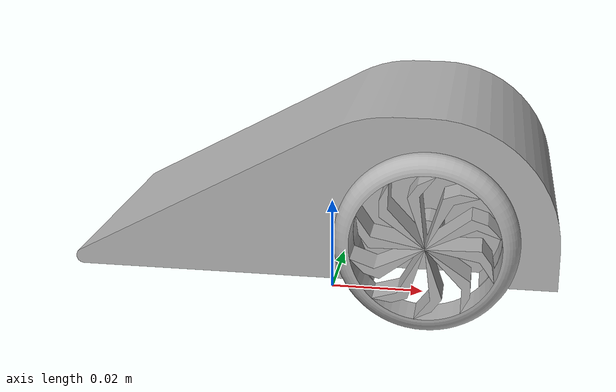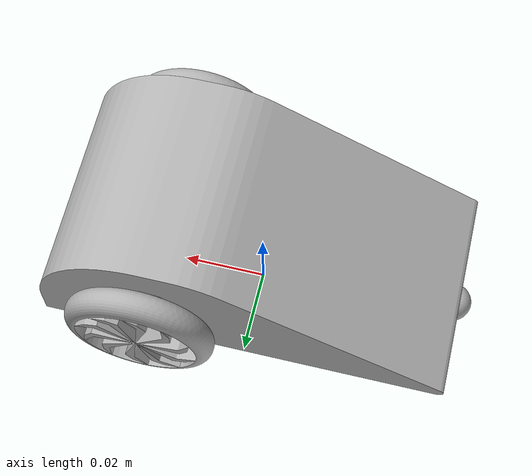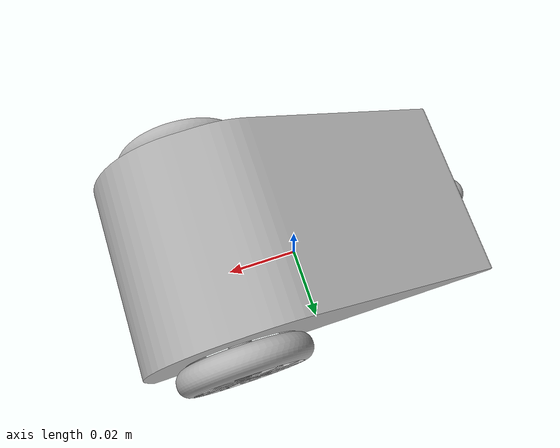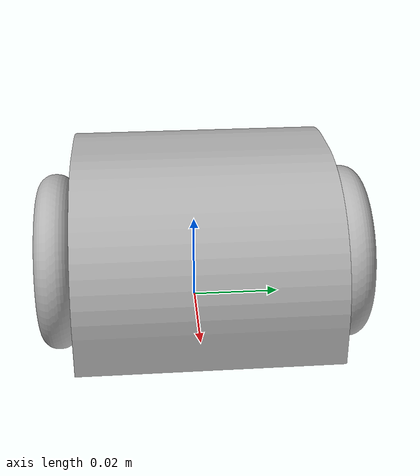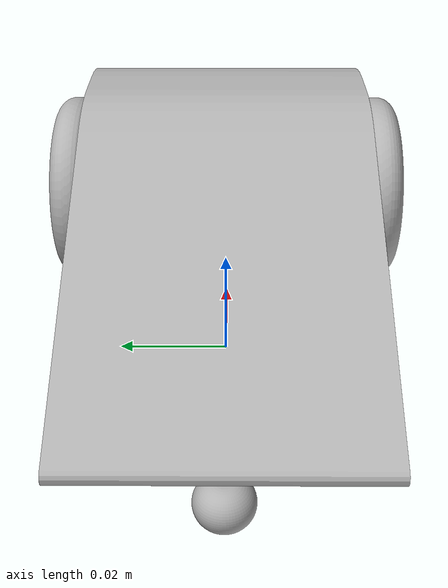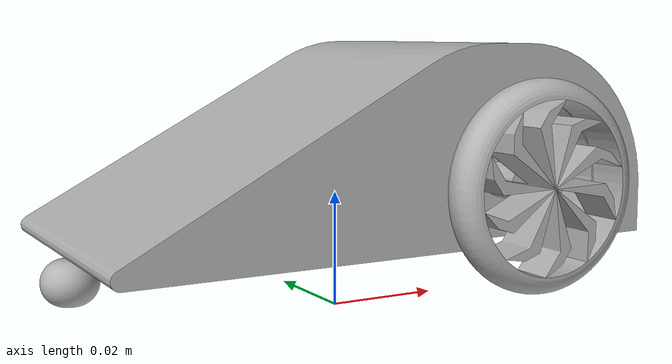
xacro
<?xml version="1.0" ?>
<robot name="mini" xmlns:xacro="http://www.ros.org/wiki/xacro">

<xacro:include filename="$(find mini_description)/urdf/materials.xacro" />
<xacro:include filename="$(find mini_description)/urdf/mini.trans" />
<xacro:include filename="$(find mini_description)/urdf/mini.gazebo" />
<link name="base_footprint"/>
<link name="base_link">
  <inertial>
    <origin xyz="0.007287773389227806 2.871730018162473e-18 0.0213343856882479" rpy="0 0 0"/>
    <mass value="0.7769198971267939"/>
    <inertia ixx="0.000207" iyy="0.000474" izz="0.00056" ixy="0.0" iyz="0.0" ixz="-4.8e-05"/>
  </inertial>
  <visual>
    <origin xyz="0 0 0" rpy="0 0 0"/>
    <geometry>
      <mesh filename="file://$(find mini_description)/meshes/base_link.stl" scale="0.001 0.001 0.001"/>
    </geometry>
    <material name="silver"/>
  </visual>
  <collision>
    <origin xyz="0 0 0" rpy="0 0 0"/>
    <geometry>
      <mesh filename="file://$(find mini_description)/meshes/base_link.stl" scale="0.001 0.001 0.001"/>
    </geometry>
  </collision>
</link>

<link name="wheel_c_1">
  <inertial>
    <origin xyz="2.5236113164461837e-08 4.440892098500626e-18 0.004297073089163117" rpy="0 0 0"/>
    <mass value="0.002723133997601544"/>
    <inertia ixx="0.0" iyy="0.0" izz="0.0" ixy="-0.0" iyz="0.0" ixz="-0.0"/>
  </inertial>
  <visual>
    <origin xyz="0.046999 -0.0 -0.0" rpy="0 0 0"/>
    <geometry>
      <mesh filename="file://$(find mini_description)/meshes/wheel_c_1.stl" scale="0.001 0.001 0.001"/>
    </geometry>
    <material name="silver"/>
  </visual>
  <collision>
    <origin xyz="0.046999 -0.0 -0.0" rpy="0 0 0"/>
    <geometry>
      <mesh filename="file://$(find mini_description)/meshes/wheel_c_1.stl" scale="0.001 0.001 0.001"/>
    </geometry>
  </collision>
</link>

<link name="wheel_l_1">
  <inertial>
    <origin xyz="-2.4118535290468257e-08 -0.0037869999999999952 1.490116086078075e-10" rpy="0 0 0"/>
    <mass value="0.024048526174821783"/>
    <inertia ixx="2e-06" iyy="4e-06" izz="2e-06" ixy="0.0" iyz="-0.0" ixz="-0.0"/>
  </inertial>
  <visual>
    <origin xyz="-0.021999 0.025 -0.018" rpy="0 0 0"/>
    <geometry>
      <mesh filename="file://$(find mini_description)/meshes/wheel_l_1.stl" scale="0.001 0.001 0.001"/>
    </geometry>
    <material name="silver"/>
  </visual>
  <collision>
    <origin xyz="-0.021999 0.025 -0.018" rpy="0 0 0"/>
    <geometry>
      <mesh filename="file://$(find mini_description)/meshes/wheel_l_1.stl" scale="0.001 0.001 0.001"/>
    </geometry>
  </collision>
</link>

<link name="wheel_r_1">
  <inertial>
    <origin xyz="-2.4118535290468257e-08 0.003787000000000002 1.490116086078075e-10" rpy="0 0 0"/>
    <mass value="0.024048526174821783"/>
    <inertia ixx="2e-06" iyy="4e-06" izz="2e-06" ixy="0.0" iyz="0.0" ixz="-0.0"/>
  </inertial>
  <visual>
    <origin xyz="-0.021999 -0.025 -0.018" rpy="0 0 0"/>
    <geometry>
      <mesh filename="file://$(find mini_description)/meshes/wheel_r_1.stl" scale="0.001 0.001 0.001"/>
    </geometry>
    <material name="silver"/>
  </visual>
  <collision>
    <origin xyz="-0.021999 -0.025 -0.018" rpy="0 0 0"/>
    <geometry>
      <mesh filename="file://$(find mini_description)/meshes/wheel_r_1.stl" scale="0.001 0.001 0.001"/>
    </geometry>
  </collision>
</link>

<joint name="base_joint" type="fixed">
  <parent link="base_footprint"/>
  <child link="base_link"/>
  <origin rpy="0 0 0" xyz="0 0 0.005"/>
</joint>

<joint name="Revolute 3" type="continuous">
  <origin xyz="-0.046999 0.0 0.0" rpy="0 0 0"/>
  <parent link="base_link"/>
  <child link="wheel_c_1"/>
  <axis xyz="0.0 0.0 -1.0"/>
</joint>

<joint name="Revolute 6" type="continuous">
  <origin xyz="0.021999 -0.025 0.018" rpy="0 0 0"/>
  <parent link="base_link"/>
  <child link="wheel_l_1"/>
  <axis xyz="0.0 -1.0 0.0"/>
</joint>

<joint name="Revolute 7" type="continuous">
  <origin xyz="0.021999 0.025 0.018" rpy="0 0 0"/>
  <parent link="base_link"/>
  <child link="wheel_r_1"/>
  <axis xyz="0.0 -1.0 0.0"/>
</joint>

</robot>

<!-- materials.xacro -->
<robot name="mini" xmlns:xacro="http://www.ros.org/wiki/xacro" >

<material name="silver">
  <color rgba="0.700 0.700 0.700 1.000"/>
</material>

</robot>
